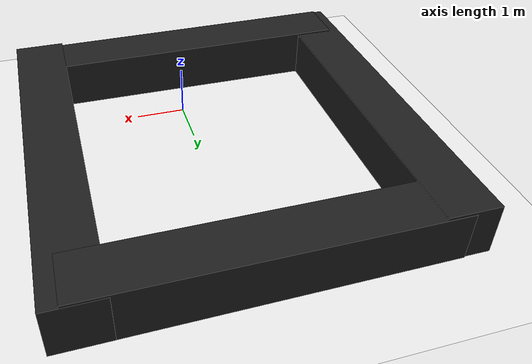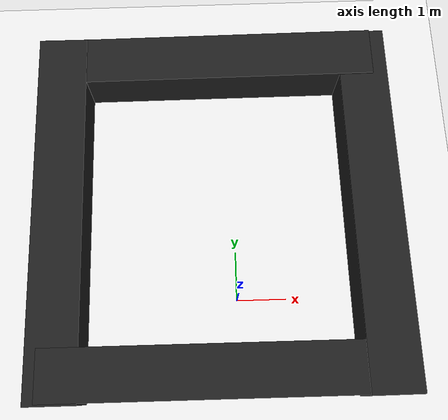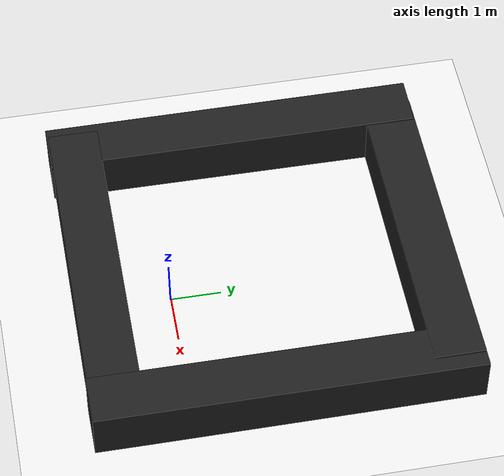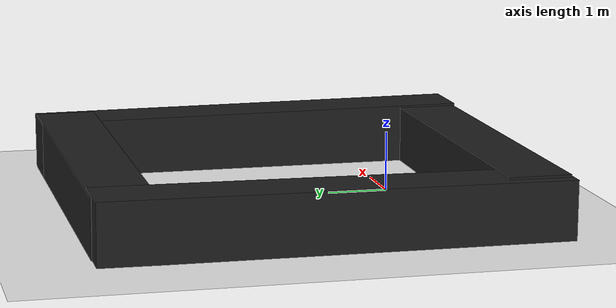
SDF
<sdf version="1.6">
 <world name="default">
  <light name="sun" type="directional">
   <pose>0 0 10 0 -0 0</pose>
   <diffuse>0.8 0.8 0.8 1</diffuse>
   <specular>0.2 0.2 0.2 1</specular>
   <attenuation>
    <range>1000</range>
    <constant>0.9</constant>
    <linear>0.01</linear>
    <quadratic>0.001</quadratic>
   </attenuation>
   <direction>-0.5 0.1 -0.9</direction>
  </light>
  <model name="ground_plane">
   <static>1</static>
   <link name="link">
    <collision name="collision">
     <geometry><plane><normal>0 0 1</normal><size>100 100</size></plane></geometry>
     <surface><friction><ode><mu>100</mu><mu2>50</mu2></ode></friction></surface>
    </collision>
    <visual name="visual">
     <cast_shadows>0</cast_shadows>
     <geometry><plane><normal>0 0 1</normal><size>100 100</size></plane></geometry>
     <material>
      <script><uri>file://media/materials/scripts/gazebo.material</uri><name>Gazebo/White</name></script>
     </material>
    </visual>
   </link>
  </model>
  <gravity>0 0 -9.8</gravity>
  <magnetic_field>6e-06 2.3e-05 -4.2e-05</magnetic_field>
  <atmosphere type="adiabatic"/>
  <physics name="default_physics" default="0" type="ode">
   <max_step_size>0.001</max_step_size>
   <real_time_factor>1</real_time_factor>
   <real_time_update_rate>1000</real_time_update_rate>
  </physics>
  <scene><ambient>0.4 0.4 0.4 1</ambient><background>0.7 0.7 0.7 1</background><shadows>1</shadows></scene>
  <spherical_coordinates>
   <surface_model>EARTH_WGS84</surface_model>
   <latitude_deg>0</latitude_deg>
   <longitude_deg>0</longitude_deg>
   <elevation>0</elevation>
   <heading_deg>0</heading_deg>
  </spherical_coordinates>
  <model name="unit_box">
   <static>1</static>
   <pose>-3.5035 1.79766 0.472601 0.006119 2.1e-05 -0.003317</pose>
   <link name="link">
    <inertial>
     <mass>1</mass>
     <inertia>
      <ixx>0.166667</ixx>
      <ixy>0</ixy>
      <ixz>0</ixz>
      <iyy>0.166667</iyy>
      <iyz>0</iyz>
      <izz>0.166667</izz>
     </inertia>
    </inertial>
    <collision name="collision"><geometry><box><size>1 7.45472 1</size></box></geometry></collision>
    <visual name="visual">
     <geometry><box><size>1 7.45472 1</size></box></geometry>
     <material>
      <script><name>Gazebo/FlatBlack</name><uri>file://media/materials/scripts/gazebo.material</uri></script>
     </material>
    </visual>
   </link>
  </model>
  <model name="unit_box_clone">
   <static>1</static>
   <pose>2.82433 1.81198 0.472594 -0.006121 -2.2e-05 0.001897</pose>
   <link name="link">
    <inertial>
     <mass>1</mass>
     <inertia>
      <ixx>0.166667</ixx>
      <ixy>0</ixy>
      <ixz>0</ixz>
      <iyy>0.166667</iyy>
      <iyz>0</iyz>
      <izz>0.166667</izz>
     </inertia>
    </inertial>
    <collision name="collision"><geometry><box><size>1 7.49786 1</size></box></geometry></collision>
    <visual name="visual">
     <geometry><box><size>1 7.49786 1</size></box></geometry>
     <material>
      <script><name>Gazebo/FlatBlack</name><uri>file://media/materials/scripts/gazebo.material</uri></script>
     </material>
    </visual>
   </link>
  </model>
  <model name="unit_box_clone_clone">
   <static>1</static>
   <pose>-0.397665 -1.4071 0.472532 -0.006119 -2.3e-05 -1.5749</pose>
   <link name="link">
    <inertial>
     <mass>1</mass>
     <inertia>
      <ixx>0.166667</ixx>
      <ixy>0</ixy>
      <ixz>0</ixz>
      <iyy>0.166667</iyy>
      <iyz>0</iyz>
      <izz>0.166667</izz>
     </inertia>
    </inertial>
    <collision name="collision"><geometry><box><size>1 7.58399 1</size></box></geometry></collision>
    <visual name="visual">
     <geometry><box><size>1 6.80382 1</size></box></geometry>
     <material>
      <script><name>Gazebo/FlatBlack</name><uri>file://media/materials/scripts/gazebo.material</uri></script>
     </material>
    </visual>
   </link>
  </model>
  <model name="unit_box_clone_clone_0">
   <static>1</static>
   <pose>-0.243571 5.04967 0.4726 0.00612 -1.9e-05 -1.56848</pose>
   <link name="link">
    <inertial>
     <mass>1</mass>
     <inertia>
      <ixx>0.166667</ixx>
      <ixy>0</ixy>
      <ixz>0</ixz>
      <iyy>0.166667</iyy>
      <iyz>0</iyz>
      <izz>0.166667</izz>
     </inertia>
    </inertial>
    <collision name="collision"><geometry><box><size>1 6.5298 1</size></box></geometry></collision>
    <visual name="visual">
     <geometry><box><size>1 6.5298 1</size></box></geometry>
     <material>
      <script><name>Gazebo/FlatBlack</name><uri>file://media/materials/scripts/gazebo.material</uri></script>
     </material>
    </visual>
   </link>
  </model>
 </world>
</sdf>
